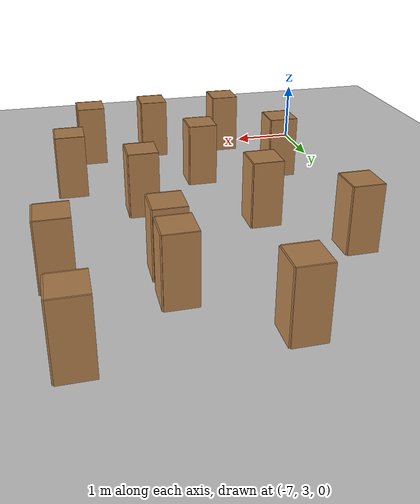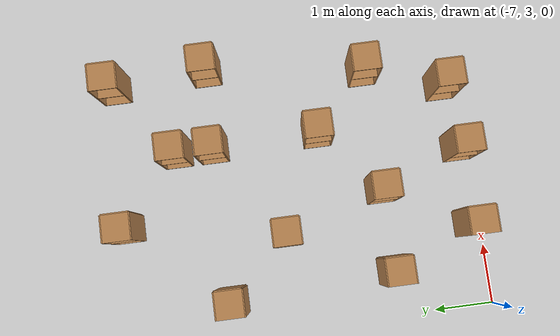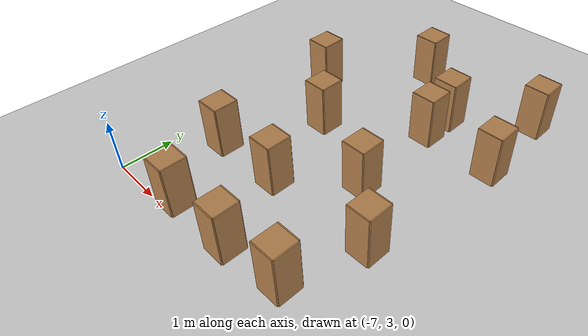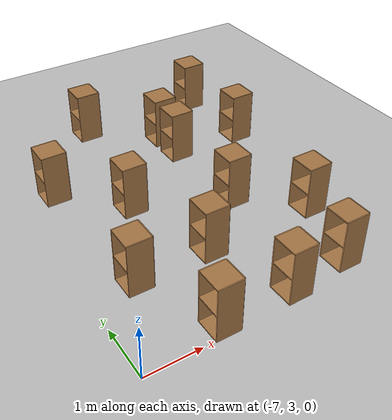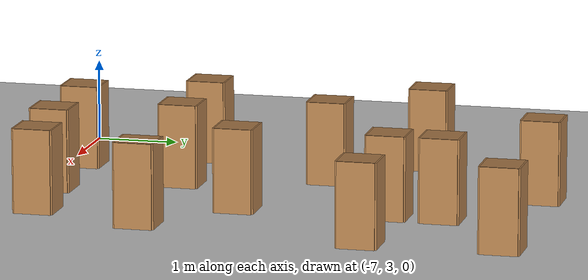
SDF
<sdf version="1.6">
 <world name="default">
  <model name="ground_plane">
   <static>1</static>
   <link name="link">
    <collision name="collision">
     <geometry><plane><normal>0 0 1</normal><size>100 100</size></plane></geometry>
     <surface><friction><ode><mu>100</mu><mu2>50</mu2></ode></friction></surface>
    </collision>
    <visual name="visual">
     <cast_shadows>0</cast_shadows>
     <geometry><plane><normal>0 0 1</normal><size>100 100</size></plane></geometry>
     <material>
      <script><uri>file://media/materials/scripts/gazebo.material</uri><name>Gazebo/Grey</name></script>
     </material>
    </visual>
   </link>
  </model>
  <model name="cabinet_36">
   <static>1</static>
   <link name="cabinet_bottom_plate">
    <inertial>
     <pose>0 0 -1 0 -0 0</pose>
     <inertia><ixx>2.05</ixx><ixy>0</ixy><ixz>0</ixz><iyy>2.05</iyy><iyz>0</iyz><izz>2.05</izz></inertia>
     <mass>25</mass>
    </inertial>
    <collision name="cabinet_bottom_plate_geom">
     <pose>0 0 0.01 0 -0 0</pose>
     <geometry><box><size>0.45 0.45 0.02</size></box></geometry>
    </collision>
    <visual name="cabinet_bottom_plate_geom_visual">
     <pose>0 0 0.01 0 -0 0</pose>
     <geometry><box><size>0.45 0.45 0.02</size></box></geometry>
     <material>
      <script><uri>file://media/materials/scripts/gazebo.material</uri><name>Gazebo/Wood</name></script>
     </material>
    </visual>
    <collision name="cabinet_bottom_plate_geom_cabinet_back_plate">
     <pose>0.235 0 0.51 0 -0 0</pose>
     <geometry><box><size>0.02 0.45 1.02</size></box></geometry>
    </collision>
    <visual name="cabinet_bottom_plate_geom_cabinet_back_plate_visual">
     <pose>0.235 0 0.51 0 -0 0</pose>
     <geometry><box><size>0.02 0.45 1.02</size></box></geometry>
     <material>
      <script><uri>file://media/materials/scripts/gazebo.material</uri><name>Gazebo/Wood</name></script>
     </material>
    </visual>
    <collision name="cabinet_bottom_plate_geom_cabinet_left_plate">
     <pose>0 0.235 0.51 0 -0 0</pose>
     <geometry><box><size>0.45 0.02 1.02</size></box></geometry>
    </collision>
    <visual name="cabinet_bottom_plate_geom_cabinet_left_plate_visual">
     <pose>0 0.235 0.51 0 -0 0</pose>
     <geometry><box><size>0.45 0.02 1.02</size></box></geometry>
     <material>
      <script><uri>file://media/materials/scripts/gazebo.material</uri><name>Gazebo/Wood</name></script>
     </material>
    </visual>
    <collision name="cabinet_bottom_plate_geom_cabinet_middle_plate">
     <pose>0 0 0.51 0 -0 0</pose>
     <geometry><box><size>0.45 0.45 0.02</size></box></geometry>
    </collision>
    <visual name="cabinet_bottom_plate_geom_cabinet_middle_plate_visual">
     <pose>0 0 0.51 0 -0 0</pose>
     <geometry><box><size>0.45 0.45 0.02</size></box></geometry>
     <material>
      <script><uri>file://media/materials/scripts/gazebo.material</uri><name>Gazebo/Wood</name></script>
     </material>
    </visual>
    <collision name="cabinet_bottom_plate_geom_cabinet_right_plate">
     <pose>0 -0.235 0.51 0 -0 0</pose>
     <geometry><box><size>0.45 0.02 1.02</size></box></geometry>
    </collision>
    <visual name="cabinet_bottom_plate_geom_cabinet_right_plate_visual">
     <pose>0 -0.235 0.51 0 -0 0</pose>
     <geometry><box><size>0.45 0.02 1.02</size></box></geometry>
     <material>
      <script><uri>file://media/materials/scripts/gazebo.material</uri><name>Gazebo/Wood</name></script>
     </material>
    </visual>
    <collision name="cabinet_bottom_plate_geom_cabinet_top_plate">
     <pose>0 0 1.01 0 -0 0</pose>
     <geometry><box><size>0.45 0.45 0.02</size></box></geometry>
    </collision>
    <visual name="cabinet_bottom_plate_geom_cabinet_top_plate_visual">
     <pose>0 0 1.01 0 -0 0</pose>
     <geometry><box><size>0.45 0.45 0.02</size></box></geometry>
     <material>
      <script><uri>file://media/materials/scripts/gazebo.material</uri><name>Gazebo/Wood</name></script>
     </material>
    </visual>
   </link>
   <pose>-4.94794 9.0679 0 0 -0 0</pose>
  </model>
  <model name="cabinet_37">
   <static>1</static>
   <link name="cabinet_bottom_plate">
    <inertial>
     <pose>0 0 -1 0 -0 0</pose>
     <inertia><ixx>2.05</ixx><ixy>0</ixy><ixz>0</ixz><iyy>2.05</iyy><iyz>0</iyz><izz>2.05</izz></inertia>
     <mass>25</mass>
    </inertial>
    <collision name="cabinet_bottom_plate_geom">
     <pose>0 0 0.01 0 -0 0</pose>
     <geometry><box><size>0.45 0.45 0.02</size></box></geometry>
    </collision>
    <visual name="cabinet_bottom_plate_geom_visual">
     <pose>0 0 0.01 0 -0 0</pose>
     <geometry><box><size>0.45 0.45 0.02</size></box></geometry>
     <material>
      <script><uri>file://media/materials/scripts/gazebo.material</uri><name>Gazebo/Wood</name></script>
     </material>
    </visual>
    <collision name="cabinet_bottom_plate_geom_cabinet_back_plate">
     <pose>0.235 0 0.51 0 -0 0</pose>
     <geometry><box><size>0.02 0.45 1.02</size></box></geometry>
    </collision>
    <visual name="cabinet_bottom_plate_geom_cabinet_back_plate_visual">
     <pose>0.235 0 0.51 0 -0 0</pose>
     <geometry><box><size>0.02 0.45 1.02</size></box></geometry>
     <material>
      <script><uri>file://media/materials/scripts/gazebo.material</uri><name>Gazebo/Wood</name></script>
     </material>
    </visual>
    <collision name="cabinet_bottom_plate_geom_cabinet_left_plate">
     <pose>0 0.235 0.51 0 -0 0</pose>
     <geometry><box><size>0.45 0.02 1.02</size></box></geometry>
    </collision>
    <visual name="cabinet_bottom_plate_geom_cabinet_left_plate_visual">
     <pose>0 0.235 0.51 0 -0 0</pose>
     <geometry><box><size>0.45 0.02 1.02</size></box></geometry>
     <material>
      <script><uri>file://media/materials/scripts/gazebo.material</uri><name>Gazebo/Wood</name></script>
     </material>
    </visual>
    <collision name="cabinet_bottom_plate_geom_cabinet_middle_plate">
     <pose>0 0 0.51 0 -0 0</pose>
     <geometry><box><size>0.45 0.45 0.02</size></box></geometry>
    </collision>
    <visual name="cabinet_bottom_plate_geom_cabinet_middle_plate_visual">
     <pose>0 0 0.51 0 -0 0</pose>
     <geometry><box><size>0.45 0.45 0.02</size></box></geometry>
     <material>
      <script><uri>file://media/materials/scripts/gazebo.material</uri><name>Gazebo/Wood</name></script>
     </material>
    </visual>
    <collision name="cabinet_bottom_plate_geom_cabinet_right_plate">
     <pose>0 -0.235 0.51 0 -0 0</pose>
     <geometry><box><size>0.45 0.02 1.02</size></box></geometry>
    </collision>
    <visual name="cabinet_bottom_plate_geom_cabinet_right_plate_visual">
     <pose>0 -0.235 0.51 0 -0 0</pose>
     <geometry><box><size>0.45 0.02 1.02</size></box></geometry>
     <material>
      <script><uri>file://media/materials/scripts/gazebo.material</uri><name>Gazebo/Wood</name></script>
     </material>
    </visual>
    <collision name="cabinet_bottom_plate_geom_cabinet_top_plate">
     <pose>0 0 1.01 0 -0 0</pose>
     <geometry><box><size>0.45 0.45 0.02</size></box></geometry>
    </collision>
    <visual name="cabinet_bottom_plate_geom_cabinet_top_plate_visual">
     <pose>0 0 1.01 0 -0 0</pose>
     <geometry><box><size>0.45 0.45 0.02</size></box></geometry>
     <material>
      <script><uri>file://media/materials/scripts/gazebo.material</uri><name>Gazebo/Wood</name></script>
     </material>
    </visual>
   </link>
   <pose>-3.74025 8.0947 0 0 -0 0</pose>
  </model>
  <model name="cabinet_38">
   <static>1</static>
   <link name="cabinet_bottom_plate">
    <inertial>
     <pose>0 0 -1 0 -0 0</pose>
     <inertia><ixx>2.05</ixx><ixy>0</ixy><ixz>0</ixz><iyy>2.05</iyy><iyz>0</iyz><izz>2.05</izz></inertia>
     <mass>25</mass>
    </inertial>
    <collision name="cabinet_bottom_plate_geom">
     <pose>0 0 0.01 0 -0 0</pose>
     <geometry><box><size>0.45 0.45 0.02</size></box></geometry>
    </collision>
    <visual name="cabinet_bottom_plate_geom_visual">
     <pose>0 0 0.01 0 -0 0</pose>
     <geometry><box><size>0.45 0.45 0.02</size></box></geometry>
     <material>
      <script><uri>file://media/materials/scripts/gazebo.material</uri><name>Gazebo/Wood</name></script>
     </material>
    </visual>
    <collision name="cabinet_bottom_plate_geom_cabinet_back_plate">
     <pose>0.235 0 0.51 0 -0 0</pose>
     <geometry><box><size>0.02 0.45 1.02</size></box></geometry>
    </collision>
    <visual name="cabinet_bottom_plate_geom_cabinet_back_plate_visual">
     <pose>0.235 0 0.51 0 -0 0</pose>
     <geometry><box><size>0.02 0.45 1.02</size></box></geometry>
     <material>
      <script><uri>file://media/materials/scripts/gazebo.material</uri><name>Gazebo/Wood</name></script>
     </material>
    </visual>
    <collision name="cabinet_bottom_plate_geom_cabinet_left_plate">
     <pose>0 0.235 0.51 0 -0 0</pose>
     <geometry><box><size>0.45 0.02 1.02</size></box></geometry>
    </collision>
    <visual name="cabinet_bottom_plate_geom_cabinet_left_plate_visual">
     <pose>0 0.235 0.51 0 -0 0</pose>
     <geometry><box><size>0.45 0.02 1.02</size></box></geometry>
     <material>
      <script><uri>file://media/materials/scripts/gazebo.material</uri><name>Gazebo/Wood</name></script>
     </material>
    </visual>
    <collision name="cabinet_bottom_plate_geom_cabinet_middle_plate">
     <pose>0 0 0.51 0 -0 0</pose>
     <geometry><box><size>0.45 0.45 0.02</size></box></geometry>
    </collision>
    <visual name="cabinet_bottom_plate_geom_cabinet_middle_plate_visual">
     <pose>0 0 0.51 0 -0 0</pose>
     <geometry><box><size>0.45 0.45 0.02</size></box></geometry>
     <material>
      <script><uri>file://media/materials/scripts/gazebo.material</uri><name>Gazebo/Wood</name></script>
     </material>
    </visual>
    <collision name="cabinet_bottom_plate_geom_cabinet_right_plate">
     <pose>0 -0.235 0.51 0 -0 0</pose>
     <geometry><box><size>0.45 0.02 1.02</size></box></geometry>
    </collision>
    <visual name="cabinet_bottom_plate_geom_cabinet_right_plate_visual">
     <pose>0 -0.235 0.51 0 -0 0</pose>
     <geometry><box><size>0.45 0.02 1.02</size></box></geometry>
     <material>
      <script><uri>file://media/materials/scripts/gazebo.material</uri><name>Gazebo/Wood</name></script>
     </material>
    </visual>
    <collision name="cabinet_bottom_plate_geom_cabinet_top_plate">
     <pose>0 0 1.01 0 -0 0</pose>
     <geometry><box><size>0.45 0.45 0.02</size></box></geometry>
    </collision>
    <visual name="cabinet_bottom_plate_geom_cabinet_top_plate_visual">
     <pose>0 0 1.01 0 -0 0</pose>
     <geometry><box><size>0.45 0.45 0.02</size></box></geometry>
     <material>
      <script><uri>file://media/materials/scripts/gazebo.material</uri><name>Gazebo/Wood</name></script>
     </material>
    </visual>
   </link>
   <pose>-2.45336 9.05743 0 0 -0 0</pose>
  </model>
  <model name="cabinet_47">
   <static>1</static>
   <link name="cabinet_bottom_plate">
    <inertial>
     <pose>0 0 -1 0 -0 0</pose>
     <inertia><ixx>2.05</ixx><ixy>0</ixy><ixz>0</ixz><iyy>2.05</iyy><iyz>0</iyz><izz>2.05</izz></inertia>
     <mass>25</mass>
    </inertial>
    <collision name="cabinet_bottom_plate_geom">
     <pose>0 0 0.01 0 -0 0</pose>
     <geometry><box><size>0.45 0.45 0.02</size></box></geometry>
    </collision>
    <visual name="cabinet_bottom_plate_geom_visual">
     <pose>0 0 0.01 0 -0 0</pose>
     <geometry><box><size>0.45 0.45 0.02</size></box></geometry>
     <material>
      <script><uri>file://media/materials/scripts/gazebo.material</uri><name>Gazebo/Wood</name></script>
     </material>
    </visual>
    <collision name="cabinet_bottom_plate_geom_cabinet_back_plate">
     <pose>0.235 0 0.51 0 -0 0</pose>
     <geometry><box><size>0.02 0.45 1.02</size></box></geometry>
    </collision>
    <visual name="cabinet_bottom_plate_geom_cabinet_back_plate_visual">
     <pose>0.235 0 0.51 0 -0 0</pose>
     <geometry><box><size>0.02 0.45 1.02</size></box></geometry>
     <material>
      <script><uri>file://media/materials/scripts/gazebo.material</uri><name>Gazebo/Wood</name></script>
     </material>
    </visual>
    <collision name="cabinet_bottom_plate_geom_cabinet_left_plate">
     <pose>0 0.235 0.51 0 -0 0</pose>
     <geometry><box><size>0.45 0.02 1.02</size></box></geometry>
    </collision>
    <visual name="cabinet_bottom_plate_geom_cabinet_left_plate_visual">
     <pose>0 0.235 0.51 0 -0 0</pose>
     <geometry><box><size>0.45 0.02 1.02</size></box></geometry>
     <material>
      <script><uri>file://media/materials/scripts/gazebo.material</uri><name>Gazebo/Wood</name></script>
     </material>
    </visual>
    <collision name="cabinet_bottom_plate_geom_cabinet_middle_plate">
     <pose>0 0 0.51 0 -0 0</pose>
     <geometry><box><size>0.45 0.45 0.02</size></box></geometry>
    </collision>
    <visual name="cabinet_bottom_plate_geom_cabinet_middle_plate_visual">
     <pose>0 0 0.51 0 -0 0</pose>
     <geometry><box><size>0.45 0.45 0.02</size></box></geometry>
     <material>
      <script><uri>file://media/materials/scripts/gazebo.material</uri><name>Gazebo/Wood</name></script>
     </material>
    </visual>
    <collision name="cabinet_bottom_plate_geom_cabinet_right_plate">
     <pose>0 -0.235 0.51 0 -0 0</pose>
     <geometry><box><size>0.45 0.02 1.02</size></box></geometry>
    </collision>
    <visual name="cabinet_bottom_plate_geom_cabinet_right_plate_visual">
     <pose>0 -0.235 0.51 0 -0 0</pose>
     <geometry><box><size>0.45 0.02 1.02</size></box></geometry>
     <material>
      <script><uri>file://media/materials/scripts/gazebo.material</uri><name>Gazebo/Wood</name></script>
     </material>
    </visual>
    <collision name="cabinet_bottom_plate_geom_cabinet_top_plate">
     <pose>0 0 1.01 0 -0 0</pose>
     <geometry><box><size>0.45 0.45 0.02</size></box></geometry>
    </collision>
    <visual name="cabinet_bottom_plate_geom_cabinet_top_plate_visual">
     <pose>0 0 1.01 0 -0 0</pose>
     <geometry><box><size>0.45 0.45 0.02</size></box></geometry>
     <material>
      <script><uri>file://media/materials/scripts/gazebo.material</uri><name>Gazebo/Wood</name></script>
     </material>
    </visual>
   </link>
   <pose>-6.38373 7.41305 0 0 -0 0</pose>
  </model>
  <model name="cabinet_48">
   <static>1</static>
   <link name="cabinet_bottom_plate">
    <inertial>
     <pose>0 0 -1 0 -0 0</pose>
     <inertia><ixx>2.05</ixx><ixy>0</ixy><ixz>0</ixz><iyy>2.05</iyy><iyz>0</iyz><izz>2.05</izz></inertia>
     <mass>25</mass>
    </inertial>
    <collision name="cabinet_bottom_plate_geom">
     <pose>0 0 0.01 0 -0 0</pose>
     <geometry><box><size>0.45 0.45 0.02</size></box></geometry>
    </collision>
    <visual name="cabinet_bottom_plate_geom_visual">
     <pose>0 0 0.01 0 -0 0</pose>
     <geometry><box><size>0.45 0.45 0.02</size></box></geometry>
     <material>
      <script><uri>file://media/materials/scripts/gazebo.material</uri><name>Gazebo/Wood</name></script>
     </material>
    </visual>
    <collision name="cabinet_bottom_plate_geom_cabinet_back_plate">
     <pose>0.235 0 0.51 0 -0 0</pose>
     <geometry><box><size>0.02 0.45 1.02</size></box></geometry>
    </collision>
    <visual name="cabinet_bottom_plate_geom_cabinet_back_plate_visual">
     <pose>0.235 0 0.51 0 -0 0</pose>
     <geometry><box><size>0.02 0.45 1.02</size></box></geometry>
     <material>
      <script><uri>file://media/materials/scripts/gazebo.material</uri><name>Gazebo/Wood</name></script>
     </material>
    </visual>
    <collision name="cabinet_bottom_plate_geom_cabinet_left_plate">
     <pose>0 0.235 0.51 0 -0 0</pose>
     <geometry><box><size>0.45 0.02 1.02</size></box></geometry>
    </collision>
    <visual name="cabinet_bottom_plate_geom_cabinet_left_plate_visual">
     <pose>0 0.235 0.51 0 -0 0</pose>
     <geometry><box><size>0.45 0.02 1.02</size></box></geometry>
     <material>
      <script><uri>file://media/materials/scripts/gazebo.material</uri><name>Gazebo/Wood</name></script>
     </material>
    </visual>
    <collision name="cabinet_bottom_plate_geom_cabinet_middle_plate">
     <pose>0 0 0.51 0 -0 0</pose>
     <geometry><box><size>0.45 0.45 0.02</size></box></geometry>
    </collision>
    <visual name="cabinet_bottom_plate_geom_cabinet_middle_plate_visual">
     <pose>0 0 0.51 0 -0 0</pose>
     <geometry><box><size>0.45 0.45 0.02</size></box></geometry>
     <material>
      <script><uri>file://media/materials/scripts/gazebo.material</uri><name>Gazebo/Wood</name></script>
     </material>
    </visual>
    <collision name="cabinet_bottom_plate_geom_cabinet_right_plate">
     <pose>0 -0.235 0.51 0 -0 0</pose>
     <geometry><box><size>0.45 0.02 1.02</size></box></geometry>
    </collision>
    <visual name="cabinet_bottom_plate_geom_cabinet_right_plate_visual">
     <pose>0 -0.235 0.51 0 -0 0</pose>
     <geometry><box><size>0.45 0.02 1.02</size></box></geometry>
     <material>
      <script><uri>file://media/materials/scripts/gazebo.material</uri><name>Gazebo/Wood</name></script>
     </material>
    </visual>
    <collision name="cabinet_bottom_plate_geom_cabinet_top_plate">
     <pose>0 0 1.01 0 -0 0</pose>
     <geometry><box><size>0.45 0.45 0.02</size></box></geometry>
    </collision>
    <visual name="cabinet_bottom_plate_geom_cabinet_top_plate_visual">
     <pose>0 0 1.01 0 -0 0</pose>
     <geometry><box><size>0.45 0.45 0.02</size></box></geometry>
     <material>
      <script><uri>file://media/materials/scripts/gazebo.material</uri><name>Gazebo/Wood</name></script>
     </material>
    </visual>
   </link>
   <pose>-5.36491 6.3692 0 0 -0 0</pose>
  </model>
  <model name="cabinet_49">
   <static>1</static>
   <link name="cabinet_bottom_plate">
    <inertial>
     <pose>0 0 -1 0 -0 0</pose>
     <inertia><ixx>2.05</ixx><ixy>0</ixy><ixz>0</ixz><iyy>2.05</iyy><iyz>0</iyz><izz>2.05</izz></inertia>
     <mass>25</mass>
    </inertial>
    <collision name="cabinet_bottom_plate_geom">
     <pose>0 0 0.01 0 -0 0</pose>
     <geometry><box><size>0.45 0.45 0.02</size></box></geometry>
    </collision>
    <visual name="cabinet_bottom_plate_geom_visual">
     <pose>0 0 0.01 0 -0 0</pose>
     <geometry><box><size>0.45 0.45 0.02</size></box></geometry>
     <material>
      <script><uri>file://media/materials/scripts/gazebo.material</uri><name>Gazebo/Wood</name></script>
     </material>
    </visual>
    <collision name="cabinet_bottom_plate_geom_cabinet_back_plate">
     <pose>0.235 0 0.51 0 -0 0</pose>
     <geometry><box><size>0.02 0.45 1.02</size></box></geometry>
    </collision>
    <visual name="cabinet_bottom_plate_geom_cabinet_back_plate_visual">
     <pose>0.235 0 0.51 0 -0 0</pose>
     <geometry><box><size>0.02 0.45 1.02</size></box></geometry>
     <material>
      <script><uri>file://media/materials/scripts/gazebo.material</uri><name>Gazebo/Wood</name></script>
     </material>
    </visual>
    <collision name="cabinet_bottom_plate_geom_cabinet_left_plate">
     <pose>0 0.235 0.51 0 -0 0</pose>
     <geometry><box><size>0.45 0.02 1.02</size></box></geometry>
    </collision>
    <visual name="cabinet_bottom_plate_geom_cabinet_left_plate_visual">
     <pose>0 0.235 0.51 0 -0 0</pose>
     <geometry><box><size>0.45 0.02 1.02</size></box></geometry>
     <material>
      <script><uri>file://media/materials/scripts/gazebo.material</uri><name>Gazebo/Wood</name></script>
     </material>
    </visual>
    <collision name="cabinet_bottom_plate_geom_cabinet_middle_plate">
     <pose>0 0 0.51 0 -0 0</pose>
     <geometry><box><size>0.45 0.45 0.02</size></box></geometry>
    </collision>
    <visual name="cabinet_bottom_plate_geom_cabinet_middle_plate_visual">
     <pose>0 0 0.51 0 -0 0</pose>
     <geometry><box><size>0.45 0.45 0.02</size></box></geometry>
     <material>
      <script><uri>file://media/materials/scripts/gazebo.material</uri><name>Gazebo/Wood</name></script>
     </material>
    </visual>
    <collision name="cabinet_bottom_plate_geom_cabinet_right_plate">
     <pose>0 -0.235 0.51 0 -0 0</pose>
     <geometry><box><size>0.45 0.02 1.02</size></box></geometry>
    </collision>
    <visual name="cabinet_bottom_plate_geom_cabinet_right_plate_visual">
     <pose>0 -0.235 0.51 0 -0 0</pose>
     <geometry><box><size>0.45 0.02 1.02</size></box></geometry>
     <material>
      <script><uri>file://media/materials/scripts/gazebo.material</uri><name>Gazebo/Wood</name></script>
     </material>
    </visual>
    <collision name="cabinet_bottom_plate_geom_cabinet_top_plate">
     <pose>0 0 1.01 0 -0 0</pose>
     <geometry><box><size>0.45 0.45 0.02</size></box></geometry>
    </collision>
    <visual name="cabinet_bottom_plate_geom_cabinet_top_plate_visual">
     <pose>0 0 1.01 0 -0 0</pose>
     <geometry><box><size>0.45 0.45 0.02</size></box></geometry>
     <material>
      <script><uri>file://media/materials/scripts/gazebo.material</uri><name>Gazebo/Wood</name></script>
     </material>
    </visual>
   </link>
   <pose>-3.74075 7.45533 0 0 -0 0</pose>
  </model>
  <model name="cabinet_50">
   <static>1</static>
   <link name="cabinet_bottom_plate">
    <inertial>
     <pose>0 0 -1 0 -0 0</pose>
     <inertia><ixx>2.05</ixx><ixy>0</ixy><ixz>0</ixz><iyy>2.05</iyy><iyz>0</iyz><izz>2.05</izz></inertia>
     <mass>25</mass>
    </inertial>
    <collision name="cabinet_bottom_plate_geom">
     <pose>0 0 0.01 0 -0 0</pose>
     <geometry><box><size>0.45 0.45 0.02</size></box></geometry>
    </collision>
    <visual name="cabinet_bottom_plate_geom_visual">
     <pose>0 0 0.01 0 -0 0</pose>
     <geometry><box><size>0.45 0.45 0.02</size></box></geometry>
     <material>
      <script><uri>file://media/materials/scripts/gazebo.material</uri><name>Gazebo/Wood</name></script>
     </material>
    </visual>
    <collision name="cabinet_bottom_plate_geom_cabinet_back_plate">
     <pose>0.235 0 0.51 0 -0 0</pose>
     <geometry><box><size>0.02 0.45 1.02</size></box></geometry>
    </collision>
    <visual name="cabinet_bottom_plate_geom_cabinet_back_plate_visual">
     <pose>0.235 0 0.51 0 -0 0</pose>
     <geometry><box><size>0.02 0.45 1.02</size></box></geometry>
     <material>
      <script><uri>file://media/materials/scripts/gazebo.material</uri><name>Gazebo/Wood</name></script>
     </material>
    </visual>
    <collision name="cabinet_bottom_plate_geom_cabinet_left_plate">
     <pose>0 0.235 0.51 0 -0 0</pose>
     <geometry><box><size>0.45 0.02 1.02</size></box></geometry>
    </collision>
    <visual name="cabinet_bottom_plate_geom_cabinet_left_plate_visual">
     <pose>0 0.235 0.51 0 -0 0</pose>
     <geometry><box><size>0.45 0.02 1.02</size></box></geometry>
     <material>
      <script><uri>file://media/materials/scripts/gazebo.material</uri><name>Gazebo/Wood</name></script>
     </material>
    </visual>
    <collision name="cabinet_bottom_plate_geom_cabinet_middle_plate">
     <pose>0 0 0.51 0 -0 0</pose>
     <geometry><box><size>0.45 0.45 0.02</size></box></geometry>
    </collision>
    <visual name="cabinet_bottom_plate_geom_cabinet_middle_plate_visual">
     <pose>0 0 0.51 0 -0 0</pose>
     <geometry><box><size>0.45 0.45 0.02</size></box></geometry>
     <material>
      <script><uri>file://media/materials/scripts/gazebo.material</uri><name>Gazebo/Wood</name></script>
     </material>
    </visual>
    <collision name="cabinet_bottom_plate_geom_cabinet_right_plate">
     <pose>0 -0.235 0.51 0 -0 0</pose>
     <geometry><box><size>0.45 0.02 1.02</size></box></geometry>
    </collision>
    <visual name="cabinet_bottom_plate_geom_cabinet_right_plate_visual">
     <pose>0 -0.235 0.51 0 -0 0</pose>
     <geometry><box><size>0.45 0.02 1.02</size></box></geometry>
     <material>
      <script><uri>file://media/materials/scripts/gazebo.material</uri><name>Gazebo/Wood</name></script>
     </material>
    </visual>
    <collision name="cabinet_bottom_plate_geom_cabinet_top_plate">
     <pose>0 0 1.01 0 -0 0</pose>
     <geometry><box><size>0.45 0.45 0.02</size></box></geometry>
    </collision>
    <visual name="cabinet_bottom_plate_geom_cabinet_top_plate_visual">
     <pose>0 0 1.01 0 -0 0</pose>
     <geometry><box><size>0.45 0.45 0.02</size></box></geometry>
     <material>
      <script><uri>file://media/materials/scripts/gazebo.material</uri><name>Gazebo/Wood</name></script>
     </material>
    </visual>
   </link>
   <pose>-2.34153 7.42237 0 0 -0 0</pose>
  </model>
  <model name="cabinet_60">
   <static>1</static>
   <link name="cabinet_bottom_plate">
    <inertial>
     <pose>0 0 -1 0 -0 0</pose>
     <inertia><ixx>2.05</ixx><ixy>0</ixy><ixz>0</ixz><iyy>2.05</iyy><iyz>0</iyz><izz>2.05</izz></inertia>
     <mass>25</mass>
    </inertial>
    <collision name="cabinet_bottom_plate_geom">
     <pose>0 0 0.01 0 -0 0</pose>
     <geometry><box><size>0.45 0.45 0.02</size></box></geometry>
    </collision>
    <visual name="cabinet_bottom_plate_geom_visual">
     <pose>0 0 0.01 0 -0 0</pose>
     <geometry><box><size>0.45 0.45 0.02</size></box></geometry>
     <material>
      <script><uri>file://media/materials/scripts/gazebo.material</uri><name>Gazebo/Wood</name></script>
     </material>
    </visual>
    <collision name="cabinet_bottom_plate_geom_cabinet_back_plate">
     <pose>0.235 0 0.51 0 -0 0</pose>
     <geometry><box><size>0.02 0.45 1.02</size></box></geometry>
    </collision>
    <visual name="cabinet_bottom_plate_geom_cabinet_back_plate_visual">
     <pose>0.235 0 0.51 0 -0 0</pose>
     <geometry><box><size>0.02 0.45 1.02</size></box></geometry>
     <material>
      <script><uri>file://media/materials/scripts/gazebo.material</uri><name>Gazebo/Wood</name></script>
     </material>
    </visual>
    <collision name="cabinet_bottom_plate_geom_cabinet_left_plate">
     <pose>0 0.235 0.51 0 -0 0</pose>
     <geometry><box><size>0.45 0.02 1.02</size></box></geometry>
    </collision>
    <visual name="cabinet_bottom_plate_geom_cabinet_left_plate_visual">
     <pose>0 0.235 0.51 0 -0 0</pose>
     <geometry><box><size>0.45 0.02 1.02</size></box></geometry>
     <material>
      <script><uri>file://media/materials/scripts/gazebo.material</uri><name>Gazebo/Wood</name></script>
     </material>
    </visual>
    <collision name="cabinet_bottom_plate_geom_cabinet_middle_plate">
     <pose>0 0 0.51 0 -0 0</pose>
     <geometry><box><size>0.45 0.45 0.02</size></box></geometry>
    </collision>
    <visual name="cabinet_bottom_plate_geom_cabinet_middle_plate_visual">
     <pose>0 0 0.51 0 -0 0</pose>
     <geometry><box><size>0.45 0.45 0.02</size></box></geometry>
     <material>
      <script><uri>file://media/materials/scripts/gazebo.material</uri><name>Gazebo/Wood</name></script>
     </material>
    </visual>
    <collision name="cabinet_bottom_plate_geom_cabinet_right_plate">
     <pose>0 -0.235 0.51 0 -0 0</pose>
     <geometry><box><size>0.45 0.02 1.02</size></box></geometry>
    </collision>
    <visual name="cabinet_bottom_plate_geom_cabinet_right_plate_visual">
     <pose>0 -0.235 0.51 0 -0 0</pose>
     <geometry><box><size>0.45 0.02 1.02</size></box></geometry>
     <material>
      <script><uri>file://media/materials/scripts/gazebo.material</uri><name>Gazebo/Wood</name></script>
     </material>
    </visual>
    <collision name="cabinet_bottom_plate_geom_cabinet_top_plate">
     <pose>0 0 1.01 0 -0 0</pose>
     <geometry><box><size>0.45 0.45 0.02</size></box></geometry>
    </collision>
    <visual name="cabinet_bottom_plate_geom_cabinet_top_plate_visual">
     <pose>0 0 1.01 0 -0 0</pose>
     <geometry><box><size>0.45 0.45 0.02</size></box></geometry>
     <material>
      <script><uri>file://media/materials/scripts/gazebo.material</uri><name>Gazebo/Wood</name></script>
     </material>
    </visual>
   </link>
   <pose>-6.2158 4.65053 0 0 -0 0</pose>
  </model>
  <model name="cabinet_61">
   <static>1</static>
   <link name="cabinet_bottom_plate">
    <inertial>
     <pose>0 0 -1 0 -0 0</pose>
     <inertia><ixx>2.05</ixx><ixy>0</ixy><ixz>0</ixz><iyy>2.05</iyy><iyz>0</iyz><izz>2.05</izz></inertia>
     <mass>25</mass>
    </inertial>
    <collision name="cabinet_bottom_plate_geom">
     <pose>0 0 0.01 0 -0 0</pose>
     <geometry><box><size>0.45 0.45 0.02</size></box></geometry>
    </collision>
    <visual name="cabinet_bottom_plate_geom_visual">
     <pose>0 0 0.01 0 -0 0</pose>
     <geometry><box><size>0.45 0.45 0.02</size></box></geometry>
     <material>
      <script><uri>file://media/materials/scripts/gazebo.material</uri><name>Gazebo/Wood</name></script>
     </material>
    </visual>
    <collision name="cabinet_bottom_plate_geom_cabinet_back_plate">
     <pose>0.235 0 0.51 0 -0 0</pose>
     <geometry><box><size>0.02 0.45 1.02</size></box></geometry>
    </collision>
    <visual name="cabinet_bottom_plate_geom_cabinet_back_plate_visual">
     <pose>0.235 0 0.51 0 -0 0</pose>
     <geometry><box><size>0.02 0.45 1.02</size></box></geometry>
     <material>
      <script><uri>file://media/materials/scripts/gazebo.material</uri><name>Gazebo/Wood</name></script>
     </material>
    </visual>
    <collision name="cabinet_bottom_plate_geom_cabinet_left_plate">
     <pose>0 0.235 0.51 0 -0 0</pose>
     <geometry><box><size>0.45 0.02 1.02</size></box></geometry>
    </collision>
    <visual name="cabinet_bottom_plate_geom_cabinet_left_plate_visual">
     <pose>0 0.235 0.51 0 -0 0</pose>
     <geometry><box><size>0.45 0.02 1.02</size></box></geometry>
     <material>
      <script><uri>file://media/materials/scripts/gazebo.material</uri><name>Gazebo/Wood</name></script>
     </material>
    </visual>
    <collision name="cabinet_bottom_plate_geom_cabinet_middle_plate">
     <pose>0 0 0.51 0 -0 0</pose>
     <geometry><box><size>0.45 0.45 0.02</size></box></geometry>
    </collision>
    <visual name="cabinet_bottom_plate_geom_cabinet_middle_plate_visual">
     <pose>0 0 0.51 0 -0 0</pose>
     <geometry><box><size>0.45 0.45 0.02</size></box></geometry>
     <material>
      <script><uri>file://media/materials/scripts/gazebo.material</uri><name>Gazebo/Wood</name></script>
     </material>
    </visual>
    <collision name="cabinet_bottom_plate_geom_cabinet_right_plate">
     <pose>0 -0.235 0.51 0 -0 0</pose>
     <geometry><box><size>0.45 0.02 1.02</size></box></geometry>
    </collision>
    <visual name="cabinet_bottom_plate_geom_cabinet_right_plate_visual">
     <pose>0 -0.235 0.51 0 -0 0</pose>
     <geometry><box><size>0.45 0.02 1.02</size></box></geometry>
     <material>
      <script><uri>file://media/materials/scripts/gazebo.material</uri><name>Gazebo/Wood</name></script>
     </material>
    </visual>
    <collision name="cabinet_bottom_plate_geom_cabinet_top_plate">
     <pose>0 0 1.01 0 -0 0</pose>
     <geometry><box><size>0.45 0.45 0.02</size></box></geometry>
    </collision>
    <visual name="cabinet_bottom_plate_geom_cabinet_top_plate_visual">
     <pose>0 0 1.01 0 -0 0</pose>
     <geometry><box><size>0.45 0.45 0.02</size></box></geometry>
     <material>
      <script><uri>file://media/materials/scripts/gazebo.material</uri><name>Gazebo/Wood</name></script>
     </material>
    </visual>
   </link>
   <pose>-4.81846 4.66424 0 0 -0 0</pose>
  </model>
  <model name="cabinet_62">
   <static>1</static>
   <link name="cabinet_bottom_plate">
    <inertial>
     <pose>0 0 -1 0 -0 0</pose>
     <inertia><ixx>2.05</ixx><ixy>0</ixy><ixz>0</ixz><iyy>2.05</iyy><iyz>0</iyz><izz>2.05</izz></inertia>
     <mass>25</mass>
    </inertial>
    <collision name="cabinet_bottom_plate_geom">
     <pose>0 0 0.01 0 -0 0</pose>
     <geometry><box><size>0.45 0.45 0.02</size></box></geometry>
    </collision>
    <visual name="cabinet_bottom_plate_geom_visual">
     <pose>0 0 0.01 0 -0 0</pose>
     <geometry><box><size>0.45 0.45 0.02</size></box></geometry>
     <material>
      <script><uri>file://media/materials/scripts/gazebo.material</uri><name>Gazebo/Wood</name></script>
     </material>
    </visual>
    <collision name="cabinet_bottom_plate_geom_cabinet_back_plate">
     <pose>0.235 0 0.51 0 -0 0</pose>
     <geometry><box><size>0.02 0.45 1.02</size></box></geometry>
    </collision>
    <visual name="cabinet_bottom_plate_geom_cabinet_back_plate_visual">
     <pose>0.235 0 0.51 0 -0 0</pose>
     <geometry><box><size>0.02 0.45 1.02</size></box></geometry>
     <material>
      <script><uri>file://media/materials/scripts/gazebo.material</uri><name>Gazebo/Wood</name></script>
     </material>
    </visual>
    <collision name="cabinet_bottom_plate_geom_cabinet_left_plate">
     <pose>0 0.235 0.51 0 -0 0</pose>
     <geometry><box><size>0.45 0.02 1.02</size></box></geometry>
    </collision>
    <visual name="cabinet_bottom_plate_geom_cabinet_left_plate_visual">
     <pose>0 0.235 0.51 0 -0 0</pose>
     <geometry><box><size>0.45 0.02 1.02</size></box></geometry>
     <material>
      <script><uri>file://media/materials/scripts/gazebo.material</uri><name>Gazebo/Wood</name></script>
     </material>
    </visual>
    <collision name="cabinet_bottom_plate_geom_cabinet_middle_plate">
     <pose>0 0 0.51 0 -0 0</pose>
     <geometry><box><size>0.45 0.45 0.02</size></box></geometry>
    </collision>
    <visual name="cabinet_bottom_plate_geom_cabinet_middle_plate_visual">
     <pose>0 0 0.51 0 -0 0</pose>
     <geometry><box><size>0.45 0.45 0.02</size></box></geometry>
     <material>
      <script><uri>file://media/materials/scripts/gazebo.material</uri><name>Gazebo/Wood</name></script>
     </material>
    </visual>
    <collision name="cabinet_bottom_plate_geom_cabinet_right_plate">
     <pose>0 -0.235 0.51 0 -0 0</pose>
     <geometry><box><size>0.45 0.02 1.02</size></box></geometry>
    </collision>
    <visual name="cabinet_bottom_plate_geom_cabinet_right_plate_visual">
     <pose>0 -0.235 0.51 0 -0 0</pose>
     <geometry><box><size>0.45 0.02 1.02</size></box></geometry>
     <material>
      <script><uri>file://media/materials/scripts/gazebo.material</uri><name>Gazebo/Wood</name></script>
     </material>
    </visual>
    <collision name="cabinet_bottom_plate_geom_cabinet_top_plate">
     <pose>0 0 1.01 0 -0 0</pose>
     <geometry><box><size>0.45 0.45 0.02</size></box></geometry>
    </collision>
    <visual name="cabinet_bottom_plate_geom_cabinet_top_plate_visual">
     <pose>0 0 1.01 0 -0 0</pose>
     <geometry><box><size>0.45 0.45 0.02</size></box></geometry>
     <material>
      <script><uri>file://media/materials/scripts/gazebo.material</uri><name>Gazebo/Wood</name></script>
     </material>
    </visual>
   </link>
   <pose>-3.68935 5.63729 0 0 -0 0</pose>
  </model>
  <model name="cabinet_63">
   <static>1</static>
   <link name="cabinet_bottom_plate">
    <inertial>
     <pose>0 0 -1 0 -0 0</pose>
     <inertia><ixx>2.05</ixx><ixy>0</ixy><ixz>0</ixz><iyy>2.05</iyy><iyz>0</iyz><izz>2.05</izz></inertia>
     <mass>25</mass>
    </inertial>
    <collision name="cabinet_bottom_plate_geom">
     <pose>0 0 0.01 0 -0 0</pose>
     <geometry><box><size>0.45 0.45 0.02</size></box></geometry>
    </collision>
    <visual name="cabinet_bottom_plate_geom_visual">
     <pose>0 0 0.01 0 -0 0</pose>
     <geometry><box><size>0.45 0.45 0.02</size></box></geometry>
     <material>
      <script><uri>file://media/materials/scripts/gazebo.material</uri><name>Gazebo/Wood</name></script>
     </material>
    </visual>
    <collision name="cabinet_bottom_plate_geom_cabinet_back_plate">
     <pose>0.235 0 0.51 0 -0 0</pose>
     <geometry><box><size>0.02 0.45 1.02</size></box></geometry>
    </collision>
    <visual name="cabinet_bottom_plate_geom_cabinet_back_plate_visual">
     <pose>0.235 0 0.51 0 -0 0</pose>
     <geometry><box><size>0.02 0.45 1.02</size></box></geometry>
     <material>
      <script><uri>file://media/materials/scripts/gazebo.material</uri><name>Gazebo/Wood</name></script>
     </material>
    </visual>
    <collision name="cabinet_bottom_plate_geom_cabinet_left_plate">
     <pose>0 0.235 0.51 0 -0 0</pose>
     <geometry><box><size>0.45 0.02 1.02</size></box></geometry>
    </collision>
    <visual name="cabinet_bottom_plate_geom_cabinet_left_plate_visual">
     <pose>0 0.235 0.51 0 -0 0</pose>
     <geometry><box><size>0.45 0.02 1.02</size></box></geometry>
     <material>
      <script><uri>file://media/materials/scripts/gazebo.material</uri><name>Gazebo/Wood</name></script>
     </material>
    </visual>
    <collision name="cabinet_bottom_plate_geom_cabinet_middle_plate">
     <pose>0 0 0.51 0 -0 0</pose>
     <geometry><box><size>0.45 0.45 0.02</size></box></geometry>
    </collision>
    <visual name="cabinet_bottom_plate_geom_cabinet_middle_plate_visual">
     <pose>0 0 0.51 0 -0 0</pose>
     <geometry><box><size>0.45 0.45 0.02</size></box></geometry>
     <material>
      <script><uri>file://media/materials/scripts/gazebo.material</uri><name>Gazebo/Wood</name></script>
     </material>
    </visual>
    <collision name="cabinet_bottom_plate_geom_cabinet_right_plate">
     <pose>0 -0.235 0.51 0 -0 0</pose>
     <geometry><box><size>0.45 0.02 1.02</size></box></geometry>
    </collision>
    <visual name="cabinet_bottom_plate_geom_cabinet_right_plate_visual">
     <pose>0 -0.235 0.51 0 -0 0</pose>
     <geometry><box><size>0.45 0.02 1.02</size></box></geometry>
     <material>
      <script><uri>file://media/materials/scripts/gazebo.material</uri><name>Gazebo/Wood</name></script>
     </material>
    </visual>
    <collision name="cabinet_bottom_plate_geom_cabinet_top_plate">
     <pose>0 0 1.01 0 -0 0</pose>
     <geometry><box><size>0.45 0.45 0.02</size></box></geometry>
    </collision>
    <visual name="cabinet_bottom_plate_geom_cabinet_top_plate_visual">
     <pose>0 0 1.01 0 -0 0</pose>
     <geometry><box><size>0.45 0.45 0.02</size></box></geometry>
     <material>
      <script><uri>file://media/materials/scripts/gazebo.material</uri><name>Gazebo/Wood</name></script>
     </material>
    </visual>
   </link>
   <pose>-2.68314 4.70154 0 0 -0 0</pose>
  </model>
  <model name="cabinet_73">
   <static>1</static>
   <link name="cabinet_bottom_plate">
    <inertial>
     <pose>0 0 -1 0 -0 0</pose>
     <inertia><ixx>2.05</ixx><ixy>0</ixy><ixz>0</ixz><iyy>2.05</iyy><iyz>0</iyz><izz>2.05</izz></inertia>
     <mass>25</mass>
    </inertial>
    <collision name="cabinet_bottom_plate_geom">
     <pose>0 0 0.01 0 -0 0</pose>
     <geometry><box><size>0.45 0.45 0.02</size></box></geometry>
    </collision>
    <visual name="cabinet_bottom_plate_geom_visual">
     <pose>0 0 0.01 0 -0 0</pose>
     <geometry><box><size>0.45 0.45 0.02</size></box></geometry>
     <material>
      <script><uri>file://media/materials/scripts/gazebo.material</uri><name>Gazebo/Wood</name></script>
     </material>
    </visual>
    <collision name="cabinet_bottom_plate_geom_cabinet_back_plate">
     <pose>0.235 0 0.51 0 -0 0</pose>
     <geometry><box><size>0.02 0.45 1.02</size></box></geometry>
    </collision>
    <visual name="cabinet_bottom_plate_geom_cabinet_back_plate_visual">
     <pose>0.235 0 0.51 0 -0 0</pose>
     <geometry><box><size>0.02 0.45 1.02</size></box></geometry>
     <material>
      <script><uri>file://media/materials/scripts/gazebo.material</uri><name>Gazebo/Wood</name></script>
     </material>
    </visual>
    <collision name="cabinet_bottom_plate_geom_cabinet_left_plate">
     <pose>0 0.235 0.51 0 -0 0</pose>
     <geometry><box><size>0.45 0.02 1.02</size></box></geometry>
    </collision>
    <visual name="cabinet_bottom_plate_geom_cabinet_left_plate_visual">
     <pose>0 0.235 0.51 0 -0 0</pose>
     <geometry><box><size>0.45 0.02 1.02</size></box></geometry>
     <material>
      <script><uri>file://media/materials/scripts/gazebo.material</uri><name>Gazebo/Wood</name></script>
     </material>
    </visual>
    <collision name="cabinet_bottom_plate_geom_cabinet_middle_plate">
     <pose>0 0 0.51 0 -0 0</pose>
     <geometry><box><size>0.45 0.45 0.02</size></box></geometry>
    </collision>
    <visual name="cabinet_bottom_plate_geom_cabinet_middle_plate_visual">
     <pose>0 0 0.51 0 -0 0</pose>
     <geometry><box><size>0.45 0.45 0.02</size></box></geometry>
     <material>
      <script><uri>file://media/materials/scripts/gazebo.material</uri><name>Gazebo/Wood</name></script>
     </material>
    </visual>
    <collision name="cabinet_bottom_plate_geom_cabinet_right_plate">
     <pose>0 -0.235 0.51 0 -0 0</pose>
     <geometry><box><size>0.45 0.02 1.02</size></box></geometry>
    </collision>
    <visual name="cabinet_bottom_plate_geom_cabinet_right_plate_visual">
     <pose>0 -0.235 0.51 0 -0 0</pose>
     <geometry><box><size>0.45 0.02 1.02</size></box></geometry>
     <material>
      <script><uri>file://media/materials/scripts/gazebo.material</uri><name>Gazebo/Wood</name></script>
     </material>
    </visual>
    <collision name="cabinet_bottom_plate_geom_cabinet_top_plate">
     <pose>0 0 1.01 0 -0 0</pose>
     <geometry><box><size>0.45 0.45 0.02</size></box></geometry>
    </collision>
    <visual name="cabinet_bottom_plate_geom_cabinet_top_plate_visual">
     <pose>0 0 1.01 0 -0 0</pose>
     <geometry><box><size>0.45 0.45 0.02</size></box></geometry>
     <material>
      <script><uri>file://media/materials/scripts/gazebo.material</uri><name>Gazebo/Wood</name></script>
     </material>
    </visual>
   </link>
   <pose>-5.58166 3.21655 0 0 -0 0</pose>
  </model>
  <model name="cabinet_74">
   <static>1</static>
   <link name="cabinet_bottom_plate">
    <inertial>
     <pose>0 0 -1 0 -0 0</pose>
     <inertia><ixx>2.05</ixx><ixy>0</ixy><ixz>0</ixz><iyy>2.05</iyy><iyz>0</iyz><izz>2.05</izz></inertia>
     <mass>25</mass>
    </inertial>
    <collision name="cabinet_bottom_plate_geom">
     <pose>0 0 0.01 0 -0 0</pose>
     <geometry><box><size>0.45 0.45 0.02</size></box></geometry>
    </collision>
    <visual name="cabinet_bottom_plate_geom_visual">
     <pose>0 0 0.01 0 -0 0</pose>
     <geometry><box><size>0.45 0.45 0.02</size></box></geometry>
     <material>
      <script><uri>file://media/materials/scripts/gazebo.material</uri><name>Gazebo/Wood</name></script>
     </material>
    </visual>
    <collision name="cabinet_bottom_plate_geom_cabinet_back_plate">
     <pose>0.235 0 0.51 0 -0 0</pose>
     <geometry><box><size>0.02 0.45 1.02</size></box></geometry>
    </collision>
    <visual name="cabinet_bottom_plate_geom_cabinet_back_plate_visual">
     <pose>0.235 0 0.51 0 -0 0</pose>
     <geometry><box><size>0.02 0.45 1.02</size></box></geometry>
     <material>
      <script><uri>file://media/materials/scripts/gazebo.material</uri><name>Gazebo/Wood</name></script>
     </material>
    </visual>
    <collision name="cabinet_bottom_plate_geom_cabinet_left_plate">
     <pose>0 0.235 0.51 0 -0 0</pose>
     <geometry><box><size>0.45 0.02 1.02</size></box></geometry>
    </collision>
    <visual name="cabinet_bottom_plate_geom_cabinet_left_plate_visual">
     <pose>0 0.235 0.51 0 -0 0</pose>
     <geometry><box><size>0.45 0.02 1.02</size></box></geometry>
     <material>
      <script><uri>file://media/materials/scripts/gazebo.material</uri><name>Gazebo/Wood</name></script>
     </material>
    </visual>
    <collision name="cabinet_bottom_plate_geom_cabinet_middle_plate">
     <pose>0 0 0.51 0 -0 0</pose>
     <geometry><box><size>0.45 0.45 0.02</size></box></geometry>
    </collision>
    <visual name="cabinet_bottom_plate_geom_cabinet_middle_plate_visual">
     <pose>0 0 0.51 0 -0 0</pose>
     <geometry><box><size>0.45 0.45 0.02</size></box></geometry>
     <material>
      <script><uri>file://media/materials/scripts/gazebo.material</uri><name>Gazebo/Wood</name></script>
     </material>
    </visual>
    <collision name="cabinet_bottom_plate_geom_cabinet_right_plate">
     <pose>0 -0.235 0.51 0 -0 0</pose>
     <geometry><box><size>0.45 0.02 1.02</size></box></geometry>
    </collision>
    <visual name="cabinet_bottom_plate_geom_cabinet_right_plate_visual">
     <pose>0 -0.235 0.51 0 -0 0</pose>
     <geometry><box><size>0.45 0.02 1.02</size></box></geometry>
     <material>
      <script><uri>file://media/materials/scripts/gazebo.material</uri><name>Gazebo/Wood</name></script>
     </material>
    </visual>
    <collision name="cabinet_bottom_plate_geom_cabinet_top_plate">
     <pose>0 0 1.01 0 -0 0</pose>
     <geometry><box><size>0.45 0.45 0.02</size></box></geometry>
    </collision>
    <visual name="cabinet_bottom_plate_geom_cabinet_top_plate_visual">
     <pose>0 0 1.01 0 -0 0</pose>
     <geometry><box><size>0.45 0.45 0.02</size></box></geometry>
     <material>
      <script><uri>file://media/materials/scripts/gazebo.material</uri><name>Gazebo/Wood</name></script>
     </material>
    </visual>
   </link>
   <pose>-4.24633 3.22452 0 0 -0 0</pose>
  </model>
  <model name="cabinet_75">
   <static>1</static>
   <link name="cabinet_bottom_plate">
    <inertial>
     <pose>0 0 -1 0 -0 0</pose>
     <inertia><ixx>2.05</ixx><ixy>0</ixy><ixz>0</ixz><iyy>2.05</iyy><iyz>0</iyz><izz>2.05</izz></inertia>
     <mass>25</mass>
    </inertial>
    <collision name="cabinet_bottom_plate_geom">
     <pose>0 0 0.01 0 -0 0</pose>
     <geometry><box><size>0.45 0.45 0.02</size></box></geometry>
    </collision>
    <visual name="cabinet_bottom_plate_geom_visual">
     <pose>0 0 0.01 0 -0 0</pose>
     <geometry><box><size>0.45 0.45 0.02</size></box></geometry>
     <material>
      <script><uri>file://media/materials/scripts/gazebo.material</uri><name>Gazebo/Wood</name></script>
     </material>
    </visual>
    <collision name="cabinet_bottom_plate_geom_cabinet_back_plate">
     <pose>0.235 0 0.51 0 -0 0</pose>
     <geometry><box><size>0.02 0.45 1.02</size></box></geometry>
    </collision>
    <visual name="cabinet_bottom_plate_geom_cabinet_back_plate_visual">
     <pose>0.235 0 0.51 0 -0 0</pose>
     <geometry><box><size>0.02 0.45 1.02</size></box></geometry>
     <material>
      <script><uri>file://media/materials/scripts/gazebo.material</uri><name>Gazebo/Wood</name></script>
     </material>
    </visual>
    <collision name="cabinet_bottom_plate_geom_cabinet_left_plate">
     <pose>0 0.235 0.51 0 -0 0</pose>
     <geometry><box><size>0.45 0.02 1.02</size></box></geometry>
    </collision>
    <visual name="cabinet_bottom_plate_geom_cabinet_left_plate_visual">
     <pose>0 0.235 0.51 0 -0 0</pose>
     <geometry><box><size>0.45 0.02 1.02</size></box></geometry>
     <material>
      <script><uri>file://media/materials/scripts/gazebo.material</uri><name>Gazebo/Wood</name></script>
     </material>
    </visual>
    <collision name="cabinet_bottom_plate_geom_cabinet_middle_plate">
     <pose>0 0 0.51 0 -0 0</pose>
     <geometry><box><size>0.45 0.45 0.02</size></box></geometry>
    </collision>
    <visual name="cabinet_bottom_plate_geom_cabinet_middle_plate_visual">
     <pose>0 0 0.51 0 -0 0</pose>
     <geometry><box><size>0.45 0.45 0.02</size></box></geometry>
     <material>
      <script><uri>file://media/materials/scripts/gazebo.material</uri><name>Gazebo/Wood</name></script>
     </material>
    </visual>
    <collision name="cabinet_bottom_plate_geom_cabinet_right_plate">
     <pose>0 -0.235 0.51 0 -0 0</pose>
     <geometry><box><size>0.45 0.02 1.02</size></box></geometry>
    </collision>
    <visual name="cabinet_bottom_plate_geom_cabinet_right_plate_visual">
     <pose>0 -0.235 0.51 0 -0 0</pose>
     <geometry><box><size>0.45 0.02 1.02</size></box></geometry>
     <material>
      <script><uri>file://media/materials/scripts/gazebo.material</uri><name>Gazebo/Wood</name></script>
     </material>
    </visual>
    <collision name="cabinet_bottom_plate_geom_cabinet_top_plate">
     <pose>0 0 1.01 0 -0 0</pose>
     <geometry><box><size>0.45 0.45 0.02</size></box></geometry>
    </collision>
    <visual name="cabinet_bottom_plate_geom_cabinet_top_plate_visual">
     <pose>0 0 1.01 0 -0 0</pose>
     <geometry><box><size>0.45 0.45 0.02</size></box></geometry>
     <material>
      <script><uri>file://media/materials/scripts/gazebo.material</uri><name>Gazebo/Wood</name></script>
     </material>
    </visual>
   </link>
   <pose>-3.118 3.35162 0 0 -0 0</pose>
  </model>
 </world>
</sdf>
